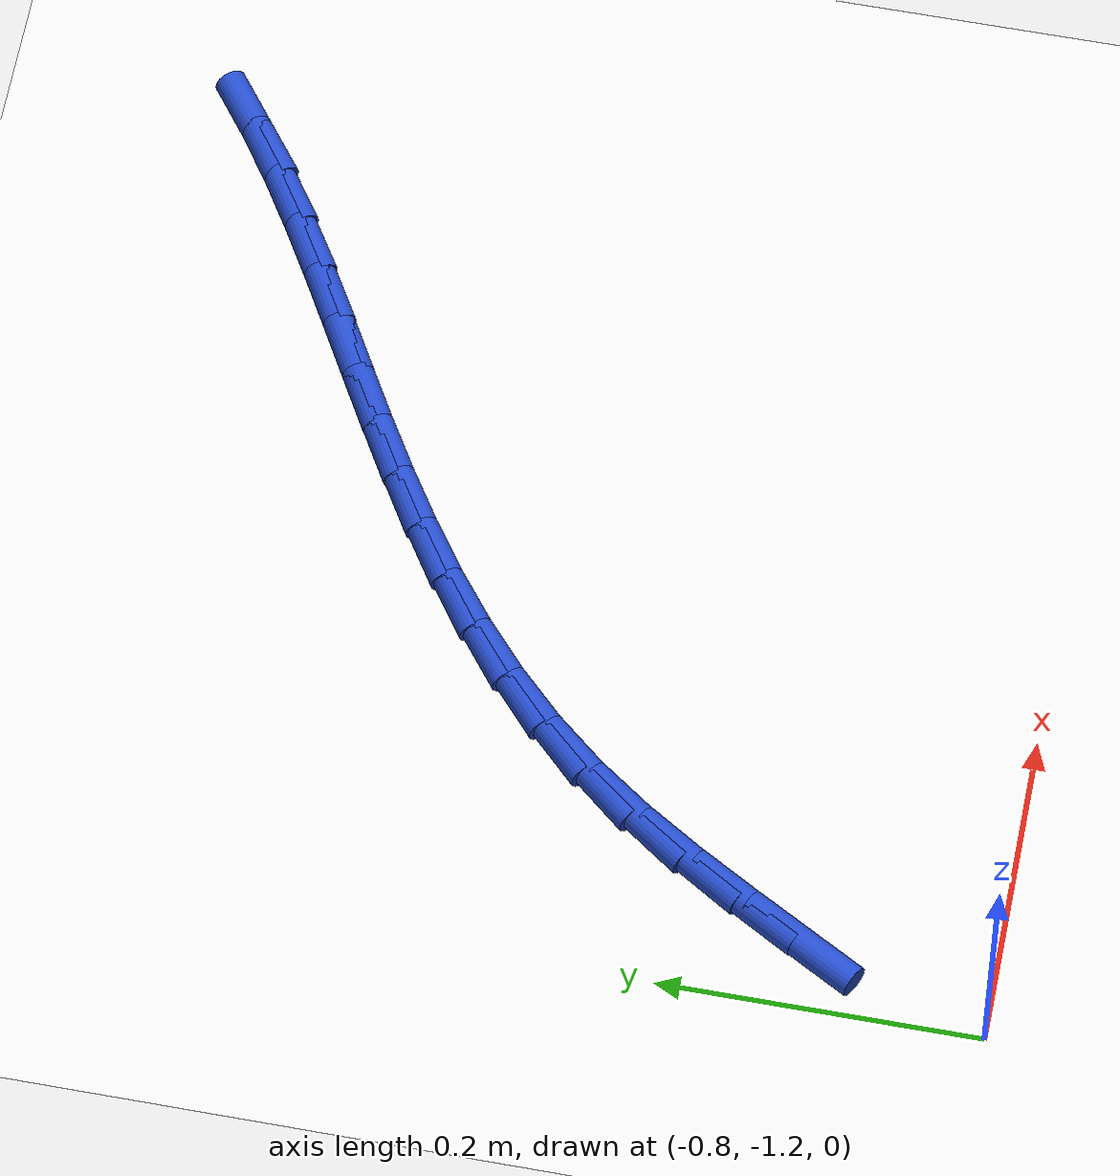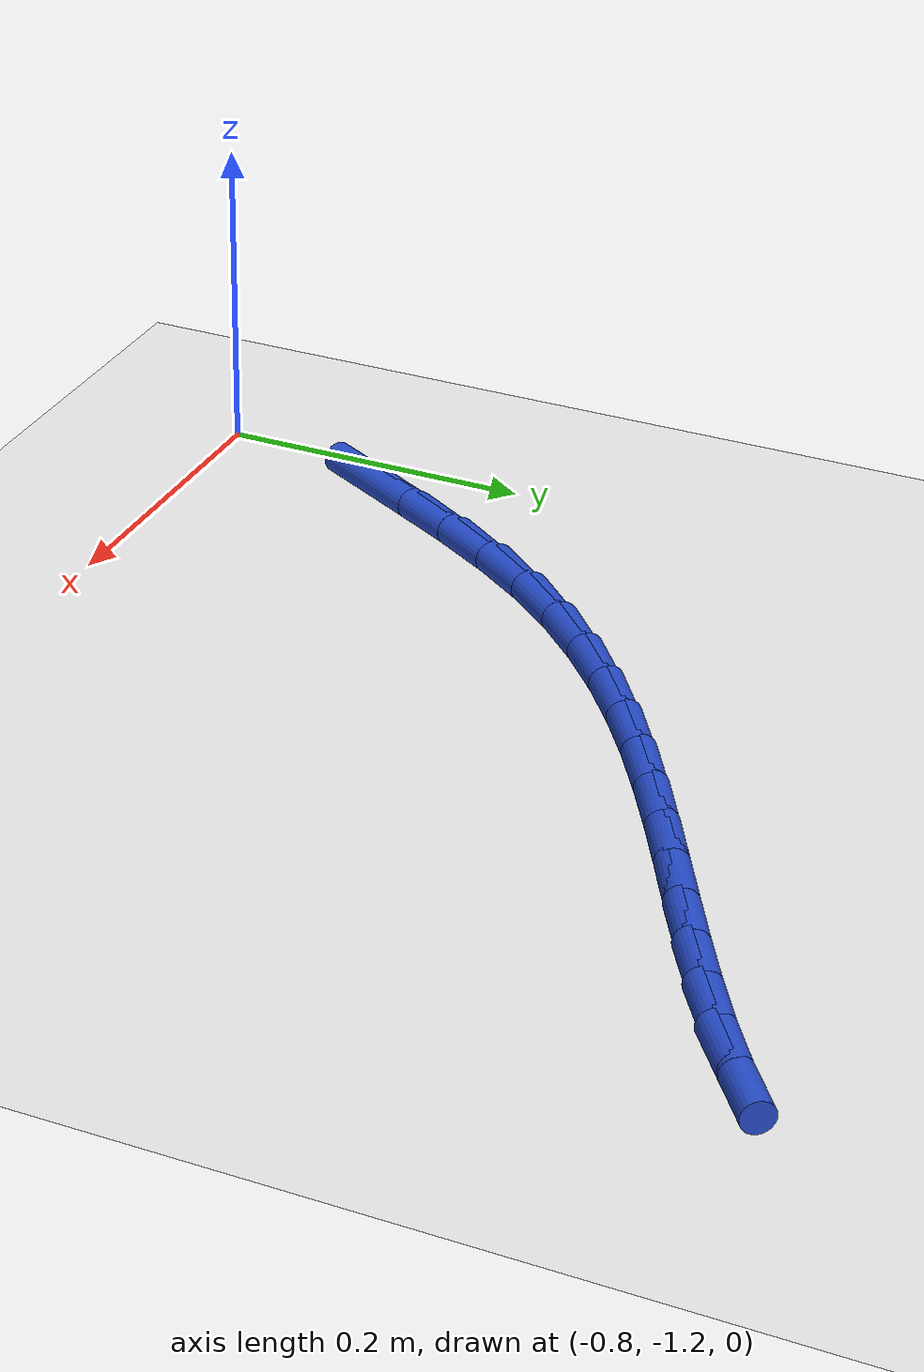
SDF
<sdf version="1.6">
 <world name="default">
  <model name="ground_plane">
   <static>1</static>
   <link name="link">
    <collision name="collision">
     <geometry><plane><normal>0 0 1</normal><size>100 100</size></plane></geometry>
     <surface><friction><ode><mu>100</mu><mu2>50</mu2></ode></friction></surface>
    </collision>
    <visual name="visual">
     <cast_shadows>0</cast_shadows>
     <geometry><plane><normal>0 0 1</normal><size>100 100</size></plane></geometry>
     <material>
      <script><uri>file://media/materials/scripts/gazebo.material</uri><name>Gazebo/WhiteGlow</name></script>
     </material>
    </visual>
   </link>
  </model>
  <model name="line">
   <link name="link_174">
    <pose>-0.7623206287369916 -1.0826895343842906 0.01 0 1.57 1.0684642781704352</pose>
    <collision name="collision">
     <geometry><cylinder><radius>0.01</radius><length>0.08</length></cylinder></geometry>
    </collision>
    <visual name="visual">
     <material>
      <script><name>Gazebo/Blue</name><uri>file://media/materials/scripts/gazebo.material</uri></script>
     </material>
     <geometry><cylinder><radius>0.01</radius><length>0.08</length></cylinder></geometry>
    </visual>
   </link>
   <link name="link_175">
    <pose>-0.7417752415521552 -1.0452890234144163 0.01 0 1.57 1.0546235228585235</pose>
    <collision name="collision">
     <geometry><cylinder><radius>0.01</radius><length>0.08</length></cylinder></geometry>
    </collision>
    <visual name="visual">
     <material>
      <script><name>Gazebo/Blue</name><uri>file://media/materials/scripts/gazebo.material</uri></script>
     </material>
     <geometry><cylinder><radius>0.01</radius><length>0.08</length></cylinder></geometry>
    </visual>
   </link>
   <link name="link_176">
    <pose>-0.7205546857831763 -1.0078953847019863 0.01 0 1.57 1.0177742124559355</pose>
    <collision name="collision">
     <geometry><cylinder><radius>0.01</radius><length>0.08</length></cylinder></geometry>
    </collision>
    <visual name="visual">
     <material>
      <script><name>Gazebo/Blue</name><uri>file://media/materials/scripts/gazebo.material</uri></script>
     </material>
     <geometry><cylinder><radius>0.01</radius><length>0.08</length></cylinder></geometry>
    </visual>
   </link>
   <link name="link_177">
    <pose>-0.6981384291610785 -0.971580290957698 0.01 0 1.57 0.9558322457706462</pose>
    <collision name="collision">
     <geometry><cylinder><radius>0.01</radius><length>0.08</length></cylinder></geometry>
    </collision>
    <visual name="visual">
     <material>
      <script><name>Gazebo/Blue</name><uri>file://media/materials/scripts/gazebo.material</uri></script>
     </material>
     <geometry><cylinder><radius>0.01</radius><length>0.08</length></cylinder></geometry>
    </visual>
   </link>
   <link name="link_178">
    <pose>-0.6740062448013813 -0.9374148716380211 0.01 0 1.57 0.8739992372474679</pose>
    <collision name="collision">
     <geometry><cylinder><radius>0.01</radius><length>0.08</length></cylinder></geometry>
    </collision>
    <visual name="visual">
     <material>
      <script><name>Gazebo/Blue</name><uri>file://media/materials/scripts/gazebo.material</uri></script>
     </material>
     <geometry><cylinder><radius>0.01</radius><length>0.08</length></cylinder></geometry>
    </visual>
   </link>
   <link name="link_179">
    <pose>-0.6478279776687689 -0.9061321338120464 0.01 0 1.57 0.794955407914147</pose>
    <collision name="collision">
     <geometry><cylinder><radius>0.01</radius><length>0.08</length></cylinder></geometry>
    </collision>
    <visual name="visual">
     <material>
      <script><name>Gazebo/Blue</name><uri>file://media/materials/scripts/gazebo.material</uri></script>
     </material>
     <geometry><cylinder><radius>0.01</radius><length>0.08</length></cylinder></geometry>
    </visual>
   </link>
   <link name="link_180">
    <pose>-0.6197875656052338 -0.8775505550602787 0.01 0 1.57 0.7242807891677189</pose>
    <collision name="collision">
     <geometry><cylinder><radius>0.01</radius><length>0.08</length></cylinder></geometry>
    </collision>
    <visual name="visual">
     <material>
      <script><name>Gazebo/Blue</name><uri>file://media/materials/scripts/gazebo.material</uri></script>
     </material>
     <geometry><cylinder><radius>0.01</radius><length>0.08</length></cylinder></geometry>
    </visual>
   </link>
   <link name="link_181">
    <pose>-0.5901550095284472 -0.851335513739209 0.01 0 1.57 0.663198314572058</pose>
    <collision name="collision">
     <geometry><cylinder><radius>0.01</radius><length>0.08</length></cylinder></geometry>
    </collision>
    <visual name="visual">
     <material>
      <script><name>Gazebo/Blue</name><uri>file://media/materials/scripts/gazebo.material</uri></script>
     </material>
     <geometry><cylinder><radius>0.01</radius><length>0.08</length></cylinder></geometry>
    </visual>
   </link>
   <link name="link_182">
    <pose>-0.5592003103560805 -0.8271523882053282 0.01 0 1.57 0.6124232961027698</pose>
    <collision name="collision">
     <geometry><cylinder><radius>0.01</radius><length>0.08</length></cylinder></geometry>
    </collision>
    <visual name="visual">
     <material>
      <script><name>Gazebo/Blue</name><uri>file://media/materials/scripts/gazebo.material</uri></script>
     </material>
     <geometry><cylinder><radius>0.01</radius><length>0.08</length></cylinder></geometry>
    </visual>
   </link>
   <link name="link_183">
    <pose>-0.5271934690058041 -0.8046665568151269 0.01 0 1.57 0.57229777676629</pose>
    <collision name="collision">
     <geometry><cylinder><radius>0.01</radius><length>0.08</length></cylinder></geometry>
    </collision>
    <visual name="visual">
     <material>
      <script><name>Gazebo/Blue</name><uri>file://media/materials/scripts/gazebo.material</uri></script>
     </material>
     <geometry><cylinder><radius>0.01</radius><length>0.08</length></cylinder></geometry>
    </visual>
   </link>
   <link name="link_184">
    <pose>-0.494404486395291 -0.7835433979250972 0.01 0 1.57 0.5429423968929324</pose>
    <collision name="collision">
     <geometry><cylinder><radius>0.01</radius><length>0.08</length></cylinder></geometry>
    </collision>
    <visual name="visual">
     <material>
      <script><name>Gazebo/Blue</name><uri>file://media/materials/scripts/gazebo.material</uri></script>
     </material>
     <geometry><cylinder><radius>0.01</radius><length>0.08</length></cylinder></geometry>
    </visual>
   </link>
   <link name="link_185">
    <pose>-0.4611033634422119 -0.7634482898917294 0.01 0 1.57 0.5243914314615106</pose>
    <collision name="collision">
     <geometry><cylinder><radius>0.01</radius><length>0.08</length></cylinder></geometry>
    </collision>
    <visual name="visual">
     <material>
      <script><name>Gazebo/Blue</name><uri>file://media/materials/scripts/gazebo.material</uri></script>
     </material>
     <geometry><cylinder><radius>0.01</radius><length>0.08</length></cylinder></geometry>
    </visual>
   </link>
   <link name="link_186">
    <pose>-0.42756010106423786 -0.7440466110715148 0.01 0 1.57 0.5166958117831955</pose>
    <collision name="collision">
     <geometry><cylinder><radius>0.01</radius><length>0.08</length></cylinder></geometry>
    </collision>
    <visual name="visual">
     <material>
      <script><name>Gazebo/Blue</name><uri>file://media/materials/scripts/gazebo.material</uri></script>
     </material>
     <geometry><cylinder><radius>0.01</radius><length>0.08</length></cylinder></geometry>
    </visual>
   </link>
   <link name="link_187">
    <pose>-0.3940447001790405 -0.7250037398209443 0.01 0 1.57 0.5199907202498214</pose>
    <collision name="collision">
     <geometry><cylinder><radius>0.01</radius><length>0.08</length></cylinder></geometry>
    </collision>
    <visual name="visual">
     <material>
      <script><name>Gazebo/Blue</name><uri>file://media/materials/scripts/gazebo.material</uri></script>
     </material>
     <geometry><cylinder><radius>0.01</radius><length>0.08</length></cylinder></geometry>
    </visual>
   </link>
   <link name="link_188">
    <pose>-0.36082716170429086 -0.7059850544965087 0.01 0 1.57 0.5345280237976531</pose>
    <collision name="collision">
     <geometry><cylinder><radius>0.01</radius><length>0.08</length></cylinder></geometry>
    </collision>
    <visual name="visual">
     <material>
      <script><name>Gazebo/Blue</name><uri>file://media/materials/scripts/gazebo.material</uri></script>
     </material>
     <geometry><cylinder><radius>0.01</radius><length>0.08</length></cylinder></geometry>
    </visual>
   </link>
   <link name="link_189">
    <pose>-0.3281774865576598 -0.686655933454699 0.01 0 1.57 0.5606716726027872</pose>
    <collision name="collision">
     <geometry><cylinder><radius>0.01</radius><length>0.08</length></cylinder></geometry>
    </collision>
    <visual name="visual">
     <material>
      <script><name>Gazebo/Blue</name><uri>file://media/materials/scripts/gazebo.material</uri></script>
     </material>
     <geometry><cylinder><radius>0.01</radius><length>0.08</length></cylinder></geometry>
    </visual>
   </link>
   <link name="link_190">
    <pose>-0.2963656756568201 -0.6666817550520067 0.01 0 1.57 0.5988489593123811</pose>
    <collision name="collision">
     <geometry><cylinder><radius>0.01</radius><length>0.08</length></cylinder></geometry>
    </collision>
    <visual name="visual">
     <material>
      <script><name>Gazebo/Blue</name><uri>file://media/materials/scripts/gazebo.material</uri></script>
     </material>
     <geometry><cylinder><radius>0.01</radius><length>0.08</length></cylinder></geometry>
    </visual>
   </link>
   <link name="link_191">
    <pose>-0.26566172991944226 -0.6457278976449226 0.01 0 1.57 0.6494453135484408</pose>
    <collision name="collision">
     <geometry><cylinder><radius>0.01</radius><length>0.08</length></cylinder></geometry>
    </collision>
    <visual name="visual">
     <material>
      <script><name>Gazebo/Blue</name><uri>file://media/materials/scripts/gazebo.material</uri></script>
     </material>
     <geometry><cylinder><radius>0.01</radius><length>0.08</length></cylinder></geometry>
    </visual>
   </link>
  </model>
 </world>
</sdf>
